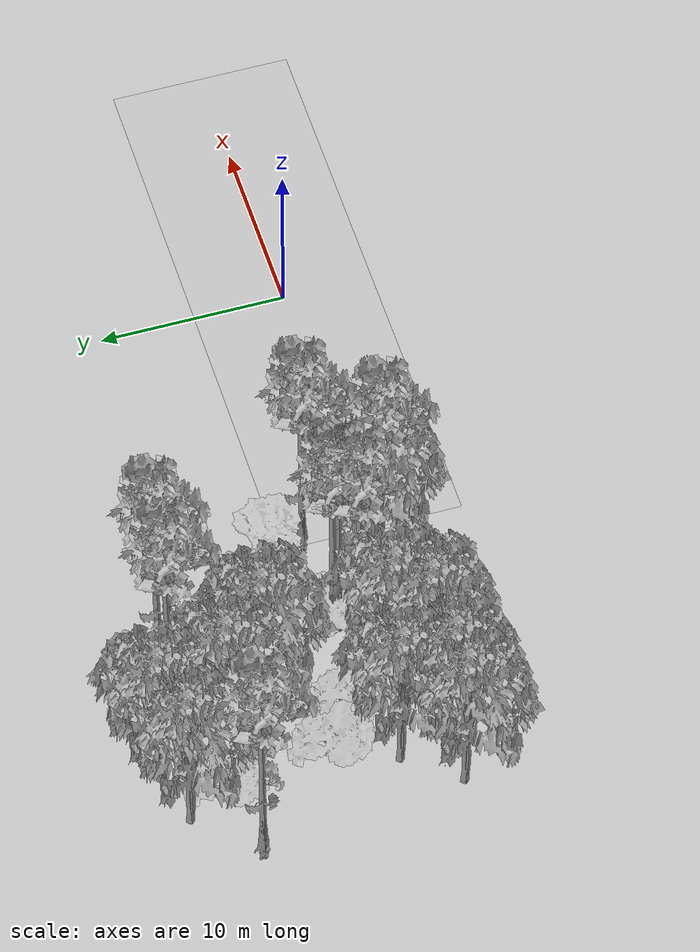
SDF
<sdf version="1.7">
 <world name="default">
  <model name="ground_plane">
   <static>1</static>
   <link name="link">
    <collision name="collision">
     <pose>-50 0 0 0 -0 0</pose>
     <geometry><plane><normal>0 0 1</normal><size>100 100</size></plane></geometry>
     <surface><contact><ode><min_depth>0.01</min_depth><max_vel>0</max_vel></ode></contact></surface>
    </collision>
    <visual name="grass">
     <cast_shadows>0</cast_shadows>
     <geometry>
      <mesh>
       <scale>0.5814285714285714 0.18142857142857144 0.1</scale>
       <uri>file://grass_plane/meshes/grass_plane.dae</uri>
      </mesh>
     </geometry>
    </visual>
   </link>
  </model>
  <model name="Tree 15">
   <static>1</static>
   <pose>-31.964274468669547 0.09702723587530748 0 1.57079 -0 0</pose>
   <link name="link">
    <collision name="collision">
     <geometry><mesh><scale>3.5 5 3.5</scale><uri>model://tree_2/meshes/tree_2.obj</uri></mesh></geometry>
    </collision>
    <visual name="visual">
     <geometry><mesh><scale>3.5 5 3.5</scale><uri>model://tree_2/meshes/tree_2.obj</uri></mesh></geometry>
    </visual>
   </link>
  </model>
  <model name="Tree 21">
   <static>1</static>
   <pose>-24.47080471725276 8.407493665785822 0 1.57079 -0 0</pose>
   <link name="link">
    <collision name="collision">
     <geometry><mesh><scale>3.5 5 3.5</scale><uri>model://tree_2/meshes/tree_2.obj</uri></mesh></geometry>
    </collision>
    <visual name="visual">
     <geometry><mesh><scale>3.5 5 3.5</scale><uri>model://tree_2/meshes/tree_2.obj</uri></mesh></geometry>
    </visual>
   </link>
  </model>
  <model name="Tree 38">
   <static>1</static>
   <pose>-29.07133807544887 11.44362579749356 0 1.57079 -0 0</pose>
   <link name="link">
    <collision name="collision">
     <geometry><mesh><scale>4 2.5 4</scale><uri>model://tree_1/meshes/tree_1.obj</uri></mesh></geometry>
    </collision>
    <visual name="visual">
     <geometry><mesh><scale>4 2.5 4</scale><uri>model://tree_1/meshes/tree_1.obj</uri></mesh></geometry>
    </visual>
   </link>
  </model>
  <model name="Tree 46">
   <static>1</static>
   <pose>-30.28033185048402 13.85658858930822 0 1.57079 -0 0</pose>
   <link name="link">
    <collision name="collision">
     <geometry><mesh><scale>3.5 5 3.5</scale><uri>model://tree_2/meshes/tree_2.obj</uri></mesh></geometry>
    </collision>
    <visual name="visual">
     <geometry><mesh><scale>3.5 5 3.5</scale><uri>model://tree_2/meshes/tree_2.obj</uri></mesh></geometry>
    </visual>
   </link>
  </model>
  <model name="Tree 48">
   <static>1</static>
   <pose>-27.51490785298197 14.600041837876361 0 1.57079 -0 0</pose>
   <link name="link">
    <collision name="collision">
     <geometry><mesh><scale>3.5 5 3.5</scale><uri>model://tree_2/meshes/tree_2.obj</uri></mesh></geometry>
    </collision>
    <visual name="visual">
     <geometry><mesh><scale>3.5 5 3.5</scale><uri>model://tree_2/meshes/tree_2.obj</uri></mesh></geometry>
    </visual>
   </link>
  </model>
  <model name="Tree 49">
   <static>1</static>
   <pose>-20.55577533940859 4.4590502236931755 0 1.57079 -0 0</pose>
   <link name="link">
    <collision name="collision">
     <geometry><mesh><scale>4 2.5 4</scale><uri>model://tree_1/meshes/tree_1.obj</uri></mesh></geometry>
    </collision>
    <visual name="visual">
     <geometry><mesh><scale>4 2.5 4</scale><uri>model://tree_1/meshes/tree_1.obj</uri></mesh></geometry>
    </visual>
   </link>
  </model>
  <model name="Tree 82">
   <static>1</static>
   <pose>-22.798572849859575 12.814937125791673 0 1.57079 -0 0</pose>
   <link name="link">
    <collision name="collision">
     <geometry><mesh><scale>3.5 5 3.5</scale><uri>model://tree_9/meshes/tree_9.obj</uri></mesh></geometry>
    </collision>
    <visual name="visual">
     <geometry><mesh><scale>3.5 5 3.5</scale><uri>model://tree_9/meshes/tree_9.obj</uri></mesh></geometry>
    </visual>
   </link>
  </model>
  <model name="Tree 108">
   <static>1</static>
   <pose>-28.31416262497379 5.833674312811951 0 1.57079 -0 0</pose>
   <link name="link">
    <collision name="collision">
     <geometry><mesh><scale>4 2.5 4</scale><uri>model://tree_1/meshes/tree_1.obj</uri></mesh></geometry>
    </collision>
    <visual name="visual">
     <geometry><mesh><scale>4 2.5 4</scale><uri>model://tree_1/meshes/tree_1.obj</uri></mesh></geometry>
    </visual>
   </link>
  </model>
  <model name="Tree 110">
   <static>1</static>
   <pose>-21.2928164576487 2.359676964226729 0 1.57079 -0 0</pose>
   <link name="link">
    <collision name="collision">
     <geometry><mesh><scale>3.5 5 3.5</scale><uri>model://tree_9/meshes/tree_9.obj</uri></mesh></geometry>
    </collision>
    <visual name="visual">
     <geometry><mesh><scale>3.5 5 3.5</scale><uri>model://tree_9/meshes/tree_9.obj</uri></mesh></geometry>
    </visual>
   </link>
  </model>
  <model name="Tree 114">
   <static>1</static>
   <pose>-20.65297478239124 3.2652935233964158 0 1.57079 -0 0</pose>
   <link name="link">
    <collision name="collision">
     <geometry><mesh><scale>3.5 5 3.5</scale><uri>model://tree_9/meshes/tree_9.obj</uri></mesh></geometry>
    </collision>
    <visual name="visual">
     <geometry><mesh><scale>3.5 5 3.5</scale><uri>model://tree_9/meshes/tree_9.obj</uri></mesh></geometry>
    </visual>
   </link>
  </model>
  <model name="Tree 125">
   <static>1</static>
   <pose>-15.372239401982583 3.604998421874541 0 1.57079 -0 0</pose>
   <link name="link">
    <collision name="collision">
     <geometry><mesh><scale>3.5 5 3.5</scale><uri>model://tree_9/meshes/tree_9.obj</uri></mesh></geometry>
    </collision>
    <visual name="visual">
     <geometry><mesh><scale>3.5 5 3.5</scale><uri>model://tree_9/meshes/tree_9.obj</uri></mesh></geometry>
    </visual>
   </link>
  </model>
  <model name="Tree 132">
   <static>1</static>
   <pose>-21.628562133983692 8.010913806319397 0 1.57079 -0 0</pose>
   <link name="link">
    <collision name="collision">
     <geometry><mesh><scale>4 2.5 4</scale><uri>model://tree_1/meshes/tree_1.obj</uri></mesh></geometry>
    </collision>
    <visual name="visual">
     <geometry><mesh><scale>4 2.5 4</scale><uri>model://tree_1/meshes/tree_1.obj</uri></mesh></geometry>
    </visual>
   </link>
  </model>
  <model name="Tree 144">
   <static>1</static>
   <pose>-17.724239230882695 0.09207461864631838 0 1.57079 -0 0</pose>
   <link name="link">
    <collision name="collision">
     <geometry><mesh><scale>3.5 5 3.5</scale><uri>model://tree_9/meshes/tree_9.obj</uri></mesh></geometry>
    </collision>
    <visual name="visual">
     <geometry><mesh><scale>3.5 5 3.5</scale><uri>model://tree_9/meshes/tree_9.obj</uri></mesh></geometry>
    </visual>
   </link>
  </model>
  <model name="Tree 152">
   <static>1</static>
   <pose>-20.226909879786962 12.662399471045116 0 1.57079 -0 0</pose>
   <link name="link">
    <collision name="collision">
     <geometry><mesh><scale>3.5 5 3.5</scale><uri>model://tree_9/meshes/tree_9.obj</uri></mesh></geometry>
    </collision>
    <visual name="visual">
     <geometry><mesh><scale>3.5 5 3.5</scale><uri>model://tree_9/meshes/tree_9.obj</uri></mesh></geometry>
    </visual>
   </link>
  </model>
  <model name="Tree 180">
   <static>1</static>
   <pose>-26.38639984798719 0.21306805549470553 0 1.57079 -0 0</pose>
   <link name="link">
    <collision name="collision">
     <geometry><mesh><scale>3.5 5 3.5</scale><uri>model://tree_2/meshes/tree_2.obj</uri></mesh></geometry>
    </collision>
    <visual name="visual">
     <geometry><mesh><scale>3.5 5 3.5</scale><uri>model://tree_2/meshes/tree_2.obj</uri></mesh></geometry>
    </visual>
   </link>
  </model>
  <model name="Tree 195">
   <static>1</static>
   <pose>-26.14374230193703 4.334765521702849 0 1.57079 -0 0</pose>
   <link name="link">
    <collision name="collision">
     <geometry><mesh><scale>4 2.5 4</scale><uri>model://tree_1/meshes/tree_1.obj</uri></mesh></geometry>
    </collision>
    <visual name="visual">
     <geometry><mesh><scale>4 2.5 4</scale><uri>model://tree_1/meshes/tree_1.obj</uri></mesh></geometry>
    </visual>
   </link>
  </model>
  <model name="Tree 196">
   <static>1</static>
   <pose>-25.135035112801223 1.7307040183544231 0 1.57079 -0 0</pose>
   <link name="link">
    <collision name="collision">
     <geometry><mesh><scale>3.5 5 3.5</scale><uri>model://tree_2/meshes/tree_2.obj</uri></mesh></geometry>
    </collision>
    <visual name="visual">
     <geometry><mesh><scale>3.5 5 3.5</scale><uri>model://tree_2/meshes/tree_2.obj</uri></mesh></geometry>
    </visual>
   </link>
  </model>
  <model name="Tree 204">
   <static>1</static>
   <pose>-14.10187034756337 10.339732741762333 0 1.57079 -0 0</pose>
   <link name="link">
    <collision name="collision">
     <geometry><mesh><scale>4 2.5 4</scale><uri>model://tree_1/meshes/tree_1.obj</uri></mesh></geometry>
    </collision>
    <visual name="visual">
     <geometry><mesh><scale>4 2.5 4</scale><uri>model://tree_1/meshes/tree_1.obj</uri></mesh></geometry>
    </visual>
   </link>
  </model>
  <model name="Tree 205">
   <static>1</static>
   <pose>-32.673038850059754 10.850698395162336 0 1.57079 -0 0</pose>
   <link name="link">
    <collision name="collision">
     <geometry><mesh><scale>3.5 5 3.5</scale><uri>model://tree_9/meshes/tree_9.obj</uri></mesh></geometry>
    </collision>
    <visual name="visual">
     <geometry><mesh><scale>3.5 5 3.5</scale><uri>model://tree_9/meshes/tree_9.obj</uri></mesh></geometry>
    </visual>
   </link>
  </model>
  <model name="Tree 215">
   <static>1</static>
   <pose>-29.8124128091536 2.794330509413129 0 1.57079 -0 0</pose>
   <link name="link">
    <collision name="collision">
     <geometry><mesh><scale>3.5 5 3.5</scale><uri>model://tree_2/meshes/tree_2.obj</uri></mesh></geometry>
    </collision>
    <visual name="visual">
     <geometry><mesh><scale>3.5 5 3.5</scale><uri>model://tree_2/meshes/tree_2.obj</uri></mesh></geometry>
    </visual>
   </link>
  </model>
  <model name="Tree 239">
   <static>1</static>
   <pose>-29.949552711878496 0.08716115231221444 0 1.57079 -0 0</pose>
   <link name="link">
    <collision name="collision">
     <geometry><mesh><scale>3.5 5 3.5</scale><uri>model://tree_2/meshes/tree_2.obj</uri></mesh></geometry>
    </collision>
    <visual name="visual">
     <geometry><mesh><scale>3.5 5 3.5</scale><uri>model://tree_2/meshes/tree_2.obj</uri></mesh></geometry>
    </visual>
   </link>
  </model>
  <model name="Tree 246">
   <static>1</static>
   <pose>-26.686127281344312 10.859576644580287 0 1.57079 -0 0</pose>
   <link name="link">
    <collision name="collision">
     <geometry><mesh><scale>3.5 5 3.5</scale><uri>model://tree_2/meshes/tree_2.obj</uri></mesh></geometry>
    </collision>
    <visual name="visual">
     <geometry><mesh><scale>3.5 5 3.5</scale><uri>model://tree_2/meshes/tree_2.obj</uri></mesh></geometry>
    </visual>
   </link>
  </model>
  <model name="Tree 247">
   <static>1</static>
   <pose>-17.381718930062362 0.2129790358267556 0 1.57079 -0 0</pose>
   <link name="link">
    <collision name="collision">
     <geometry><mesh><scale>3.5 5 3.5</scale><uri>model://tree_2/meshes/tree_2.obj</uri></mesh></geometry>
    </collision>
    <visual name="visual">
     <geometry><mesh><scale>3.5 5 3.5</scale><uri>model://tree_2/meshes/tree_2.obj</uri></mesh></geometry>
    </visual>
   </link>
  </model>
  <model name="Tree 248">
   <static>1</static>
   <pose>-20.713805502327297 3.594583744637447 0 1.57079 -0 0</pose>
   <link name="link">
    <collision name="collision">
     <geometry><mesh><scale>3.5 5 3.5</scale><uri>model://tree_9/meshes/tree_9.obj</uri></mesh></geometry>
    </collision>
    <visual name="visual">
     <geometry><mesh><scale>3.5 5 3.5</scale><uri>model://tree_9/meshes/tree_9.obj</uri></mesh></geometry>
    </visual>
   </link>
  </model>
  <model name="Tree 271">
   <static>1</static>
   <pose>-15.228214393733637 4.927223809806083 0 1.57079 -0 0</pose>
   <link name="link">
    <collision name="collision">
     <geometry><mesh><scale>3 2 3</scale><uri>model://tree_3/meshes/tree_3.obj</uri></mesh></geometry>
    </collision>
    <visual name="visual">
     <geometry><mesh><scale>3 2 3</scale><uri>model://tree_3/meshes/tree_3.obj</uri></mesh></geometry>
    </visual>
   </link>
  </model>
 </world>
</sdf>
